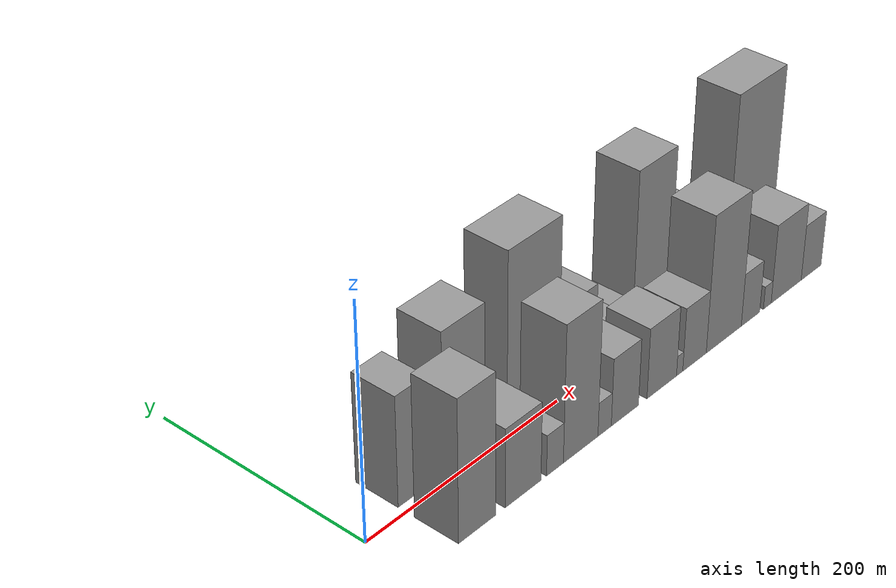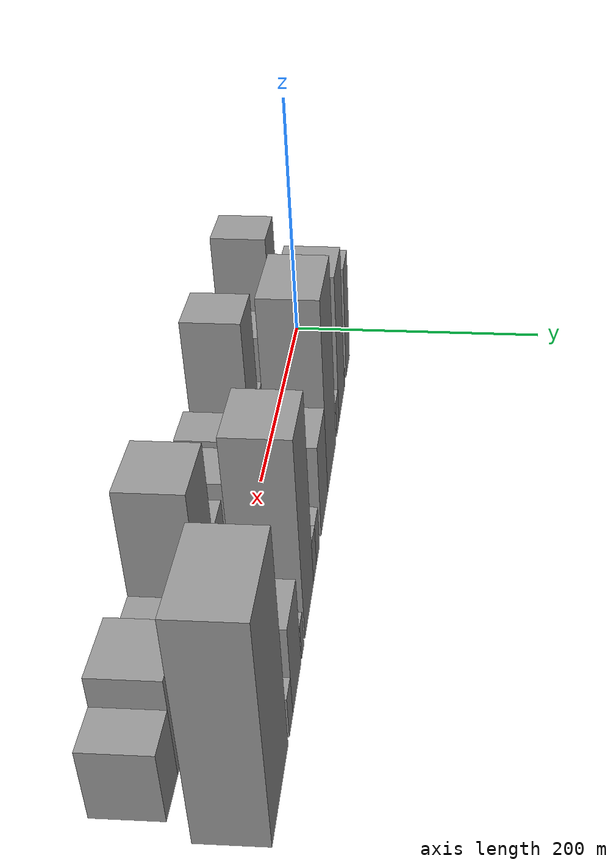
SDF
<sdf version="1.6">
 <world name="default">
  <scene>
   <sky><clouds><speed>12</speed></clouds></sky>
   <ambient>0.4 0.4 0.4 1</ambient>
   <background>0.7 0.7 0.7 1</background>
   <shadows>1</shadows>
  </scene>
  <gravity>0 0 -9.8066</gravity>
  <magnetic_field>6e-06 2.3e-05 -4.2e-05</magnetic_field>
  <physics default="0" name="default_physics" type="ode">
   <ode>
    <solver>
     <type>quick</type>
     <iters>10</iters>
     <sor>1.0</sor>
     <use_dynamic_moi_rescaling>0</use_dynamic_moi_rescaling>
    </solver>
    <constraints>
     <cfm>0</cfm>
     <erp>0.2</erp>
     <contact_max_correcting_vel>100</contact_max_correcting_vel>
     <contact_surface_layer>0.001</contact_surface_layer>
    </constraints>
   </ode>
   <max_step_size>0.004</max_step_size>
   <real_time_factor>1</real_time_factor>
   <real_time_update_rate>250</real_time_update_rate>
  </physics>
  <light name="sun" type="directional">
   <pose>0 0 10 0 0 0</pose>
   <diffuse>0.8 0.8 0.8 1</diffuse>
   <specular>0.2 0.2 0.2 1</specular>
   <attenuation>
    <range>1000</range>
    <constant>0.9</constant>
    <linear>0.01</linear>
    <quadratic>0.001</quadratic>
   </attenuation>
   <direction>-0.5 0.1 -0.9</direction>
  </light>
  <model name="building_1">
   <static>1</static>
   <pose>55.0940 27.5000 0 0.000000 0.000000 1.570796</pose>
   <link name="link">
    <pose>0 0 48.00 0 0 0</pose>
    <collision name="collision"><geometry><box><size>40.0000 30.1881 96.0000</size></box></geometry></collision>
    <visual name="visual">
     <cast_shadows>0</cast_shadows>
     <geometry><box><size>40.0000 30.1881 96.0000</size></box></geometry>
     <material>
      <script>
       <uri>model://grey_wall/materials/scripts</uri>
       <uri>model://grey_wall/materials/textures</uri>
       <name>vrc/grey_wall</name>
      </script>
     </material>
    </visual>
   </link>
  </model>
  <model name="building_2">
   <static>1</static>
   <pose>82.3466 27.5000 0 0.000000 0.000000 1.570796</pose>
   <link name="link">
    <pose>0 0 7.50 0 0 0</pose>
    <collision name="collision"><geometry><box><size>40.0000 6.3170 15.0000</size></box></geometry></collision>
    <visual name="visual">
     <cast_shadows>0</cast_shadows>
     <geometry><box><size>40.0000 6.3170 15.0000</size></box></geometry>
     <material>
      <script>
       <uri>model://grey_wall/materials/scripts</uri>
       <uri>model://grey_wall/materials/textures</uri>
       <name>vrc/grey_wall</name>
      </script>
     </material>
    </visual>
   </link>
  </model>
  <model name="building_3">
   <static>1</static>
   <pose>107.5494 27.5000 0 0.000000 0.000000 1.570796</pose>
   <link name="link">
    <pose>0 0 61.50 0 0 0</pose>
    <collision name="collision"><geometry><box><size>40.0000 44.0886 123.0000</size></box></geometry></collision>
    <visual name="visual">
     <cast_shadows>0</cast_shadows>
     <geometry><box><size>40.0000 44.0886 123.0000</size></box></geometry>
     <material>
      <script>
       <uri>model://grey_wall/materials/scripts</uri>
       <uri>model://grey_wall/materials/textures</uri>
       <name>vrc/grey_wall</name>
      </script>
     </material>
    </visual>
   </link>
  </model>
  <model name="building_4">
   <static>1</static>
   <pose>137.9453 27.5000 0 0.000000 0.000000 1.570796</pose>
   <link name="link">
    <pose>0 0 15.00 0 0 0</pose>
    <collision name="collision"><geometry><box><size>40.0000 16.7031 30.0000</size></box></geometry></collision>
    <visual name="visual">
     <cast_shadows>0</cast_shadows>
     <geometry><box><size>40.0000 16.7031 30.0000</size></box></geometry>
     <material>
      <script>
       <uri>model://grey_wall/materials/scripts</uri>
       <uri>model://grey_wall/materials/textures</uri>
       <name>vrc/grey_wall</name>
      </script>
     </material>
    </visual>
   </link>
  </model>
  <model name="building_5">
   <static>1</static>
   <pose>182.0681 27.5000 0 0.000000 0.000000 1.570796</pose>
   <link name="link">
    <pose>0 0 76.50 0 0 0</pose>
    <collision name="collision"><geometry><box><size>40.0000 57.5425 153.0000</size></box></geometry></collision>
    <visual name="visual">
     <cast_shadows>0</cast_shadows>
     <geometry><box><size>40.0000 57.5425 153.0000</size></box></geometry>
     <material>
      <script>
       <uri>model://grey_wall/materials/scripts</uri>
       <uri>model://grey_wall/materials/textures</uri>
       <name>vrc/grey_wall</name>
      </script>
     </material>
    </visual>
   </link>
  </model>
  <model name="building_6">
   <static>1</static>
   <pose>232.1030 27.5000 0 0.000000 0.000000 1.570796</pose>
   <link name="link">
    <pose>0 0 36.00 0 0 0</pose>
    <collision name="collision"><geometry><box><size>40.0000 42.5274 72.0000</size></box></geometry></collision>
    <visual name="visual">
     <cast_shadows>0</cast_shadows>
     <geometry><box><size>40.0000 42.5274 72.0000</size></box></geometry>
     <material>
      <script>
       <uri>model://grey_wall/materials/scripts</uri>
       <uri>model://grey_wall/materials/textures</uri>
       <name>vrc/grey_wall</name>
      </script>
     </material>
    </visual>
   </link>
  </model>
  <model name="building_7">
   <static>1</static>
   <pose>272.1951 27.5000 0 0.000000 0.000000 1.570796</pose>
   <link name="link">
    <pose>0 0 16.50 0 0 0</pose>
    <collision name="collision"><geometry><box><size>40.0000 17.6567 33.0000</size></box></geometry></collision>
    <visual name="visual">
     <cast_shadows>0</cast_shadows>
     <geometry><box><size>40.0000 17.6567 33.0000</size></box></geometry>
     <material>
      <script>
       <uri>model://grey_wall/materials/scripts</uri>
       <uri>model://grey_wall/materials/textures</uri>
       <name>vrc/grey_wall</name>
      </script>
     </material>
    </visual>
   </link>
  </model>
  <model name="building_8">
   <static>1</static>
   <pose>289.3772 27.5000 0 0.000000 0.000000 1.570796</pose>
   <link name="link">
    <pose>0 0 16.50 0 0 0</pose>
    <collision name="collision"><geometry><box><size>40.0000 16.7075 33.0000</size></box></geometry></collision>
    <visual name="visual">
     <cast_shadows>0</cast_shadows>
     <geometry><box><size>40.0000 16.7075 33.0000</size></box></geometry>
     <material>
      <script>
       <uri>model://grey_wall/materials/scripts</uri>
       <uri>model://grey_wall/materials/textures</uri>
       <name>vrc/grey_wall</name>
      </script>
     </material>
    </visual>
   </link>
  </model>
  <model name="building_9">
   <static>1</static>
   <pose>320.4187 27.5000 0 0.000000 0.000000 1.570796</pose>
   <link name="link">
    <pose>0 0 73.50 0 0 0</pose>
    <collision name="collision"><geometry><box><size>40.0000 45.3755 147.0000</size></box></geometry></collision>
    <visual name="visual">
     <cast_shadows>0</cast_shadows>
     <geometry><box><size>40.0000 45.3755 147.0000</size></box></geometry>
     <material>
      <script>
       <uri>model://grey_wall/materials/scripts</uri>
       <uri>model://grey_wall/materials/textures</uri>
       <name>vrc/grey_wall</name>
      </script>
     </material>
    </visual>
   </link>
  </model>
  <model name="building_10">
   <static>1</static>
   <pose>353.5130 27.5000 0 0.000000 0.000000 1.570796</pose>
   <link name="link">
    <pose>0 0 13.50 0 0 0</pose>
    <collision name="collision"><geometry><box><size>40.0000 10.8130 27.0000</size></box></geometry></collision>
    <visual name="visual">
     <cast_shadows>0</cast_shadows>
     <geometry><box><size>40.0000 10.8130 27.0000</size></box></geometry>
     <material>
      <script>
       <uri>model://grey_wall/materials/scripts</uri>
       <uri>model://grey_wall/materials/textures</uri>
       <name>vrc/grey_wall</name>
      </script>
     </material>
    </visual>
   </link>
  </model>
  <model name="building_11">
   <static>1</static>
   <pose>380.5254 27.5000 0 0.000000 0.000000 1.570796</pose>
   <link name="link">
    <pose>0 0 33.00 0 0 0</pose>
    <collision name="collision"><geometry><box><size>40.0000 37.2118 66.0000</size></box></geometry></collision>
    <visual name="visual">
     <cast_shadows>0</cast_shadows>
     <geometry><box><size>40.0000 37.2118 66.0000</size></box></geometry>
     <material>
      <script>
       <uri>model://grey_wall/materials/scripts</uri>
       <uri>model://grey_wall/materials/textures</uri>
       <name>vrc/grey_wall</name>
      </script>
     </material>
    </visual>
   </link>
  </model>
  <model name="building_12">
   <static>1</static>
   <pose>406.7990 27.5000 0 0.000000 0.000000 1.570796</pose>
   <link name="link">
    <pose>0 0 15.00 0 0 0</pose>
    <collision name="collision"><geometry><box><size>40.0000 15.3354 30.0000</size></box></geometry></collision>
    <visual name="visual">
     <cast_shadows>0</cast_shadows>
     <geometry><box><size>40.0000 15.3354 30.0000</size></box></geometry>
     <material>
      <script>
       <uri>model://grey_wall/materials/scripts</uri>
       <uri>model://grey_wall/materials/textures</uri>
       <name>vrc/grey_wall</name>
      </script>
     </material>
    </visual>
   </link>
  </model>
  <model name="building_13">
   <static>1</static>
   <pose>450.1438 27.5000 0 0.000000 0.000000 1.570796</pose>
   <link name="link">
    <pose>0 0 78.00 0 0 0</pose>
    <collision name="collision"><geometry><box><size>40.0000 61.3542 156.0000</size></box></geometry></collision>
    <visual name="visual">
     <cast_shadows>0</cast_shadows>
     <geometry><box><size>40.0000 61.3542 156.0000</size></box></geometry>
     <material>
      <script>
       <uri>model://grey_wall/materials/scripts</uri>
       <uri>model://grey_wall/materials/textures</uri>
       <name>vrc/grey_wall</name>
      </script>
     </material>
    </visual>
   </link>
  </model>
  <model name="building_14">
   <static>1</static>
   <pose>58.7246 -27.5000 0 0.000000 0.000000 1.570796</pose>
   <link name="link">
    <pose>0 0 61.50 0 0 0</pose>
    <collision name="collision"><geometry><box><size>40.0000 37.4491 123.0000</size></box></geometry></collision>
    <visual name="visual">
     <cast_shadows>0</cast_shadows>
     <geometry><box><size>40.0000 37.4491 123.0000</size></box></geometry>
     <material>
      <script>
       <uri>model://grey_wall/materials/scripts</uri>
       <uri>model://grey_wall/materials/textures</uri>
       <name>vrc/grey_wall</name>
      </script>
     </material>
    </visual>
   </link>
  </model>
  <model name="building_15">
   <static>1</static>
   <pose>106.3455 -27.5000 0 0.000000 0.000000 1.570796</pose>
   <link name="link">
    <pose>0 0 34.50 0 0 0</pose>
    <collision name="collision"><geometry><box><size>40.0000 37.7927 69.0000</size></box></geometry></collision>
    <visual name="visual">
     <cast_shadows>0</cast_shadows>
     <geometry><box><size>40.0000 37.7927 69.0000</size></box></geometry>
     <material>
      <script>
       <uri>model://grey_wall/materials/scripts</uri>
       <uri>model://grey_wall/materials/textures</uri>
       <name>vrc/grey_wall</name>
      </script>
     </material>
    </visual>
   </link>
  </model>
  <model name="building_16">
   <static>1</static>
   <pose>140.3807 -27.5000 0 0.000000 0.000000 1.570796</pose>
   <link name="link">
    <pose>0 0 18.00 0 0 0</pose>
    <collision name="collision"><geometry><box><size>40.0000 18.2777 36.0000</size></box></geometry></collision>
    <visual name="visual">
     <cast_shadows>0</cast_shadows>
     <geometry><box><size>40.0000 18.2777 36.0000</size></box></geometry>
     <material>
      <script>
       <uri>model://grey_wall/materials/scripts</uri>
       <uri>model://grey_wall/materials/textures</uri>
       <name>vrc/grey_wall</name>
      </script>
     </material>
    </visual>
   </link>
  </model>
  <model name="building_17">
   <static>1</static>
   <pose>168.7534 -27.5000 0 0.000000 0.000000 1.570796</pose>
   <link name="link">
    <pose>0 0 60.00 0 0 0</pose>
    <collision name="collision"><geometry><box><size>40.0000 38.4679 120.0000</size></box></geometry></collision>
    <visual name="visual">
     <cast_shadows>0</cast_shadows>
     <geometry><box><size>40.0000 38.4679 120.0000</size></box></geometry>
     <material>
      <script>
       <uri>model://grey_wall/materials/scripts</uri>
       <uri>model://grey_wall/materials/textures</uri>
       <name>vrc/grey_wall</name>
      </script>
     </material>
    </visual>
   </link>
  </model>
  <model name="building_18">
   <static>1</static>
   <pose>195.5808 -27.5000 0 0.000000 0.000000 1.570796</pose>
   <link name="link">
    <pose>0 0 15.00 0 0 0</pose>
    <collision name="collision"><geometry><box><size>40.0000 15.1869 30.0000</size></box></geometry></collision>
    <visual name="visual">
     <cast_shadows>0</cast_shadows>
     <geometry><box><size>40.0000 15.1869 30.0000</size></box></geometry>
     <material>
      <script>
       <uri>model://grey_wall/materials/scripts</uri>
       <uri>model://grey_wall/materials/textures</uri>
       <name>vrc/grey_wall</name>
      </script>
     </material>
    </visual>
   </link>
  </model>
  <model name="building_19">
   <static>1</static>
   <pose>218.9603 -27.5000 0 0.000000 0.000000 1.570796</pose>
   <link name="link">
    <pose>0 0 30.00 0 0 0</pose>
    <collision name="collision"><geometry><box><size>40.0000 31.5721 60.0000</size></box></geometry></collision>
    <visual name="visual">
     <cast_shadows>0</cast_shadows>
     <geometry><box><size>40.0000 31.5721 60.0000</size></box></geometry>
     <material>
      <script>
       <uri>model://grey_wall/materials/scripts</uri>
       <uri>model://grey_wall/materials/textures</uri>
       <name>vrc/grey_wall</name>
      </script>
     </material>
    </visual>
   </link>
  </model>
  <model name="building_20">
   <static>1</static>
   <pose>262.4641 -27.5000 0 0.000000 0.000000 1.570796</pose>
   <link name="link">
    <pose>0 0 31.50 0 0 0</pose>
    <collision name="collision"><geometry><box><size>40.0000 35.4355 63.0000</size></box></geometry></collision>
    <visual name="visual">
     <cast_shadows>0</cast_shadows>
     <geometry><box><size>40.0000 35.4355 63.0000</size></box></geometry>
     <material>
      <script>
       <uri>model://grey_wall/materials/scripts</uri>
       <uri>model://grey_wall/materials/textures</uri>
       <name>vrc/grey_wall</name>
      </script>
     </material>
    </visual>
   </link>
  </model>
  <model name="building_21">
   <static>1</static>
   <pose>283.9821 -27.5000 0 0.000000 0.000000 1.570796</pose>
   <link name="link">
    <pose>0 0 9.00 0 0 0</pose>
    <collision name="collision"><geometry><box><size>40.0000 7.6004 18.0000</size></box></geometry></collision>
    <visual name="visual">
     <cast_shadows>0</cast_shadows>
     <geometry><box><size>40.0000 7.6004 18.0000</size></box></geometry>
     <material>
      <script>
       <uri>model://grey_wall/materials/scripts</uri>
       <uri>model://grey_wall/materials/textures</uri>
       <name>vrc/grey_wall</name>
      </script>
     </material>
    </visual>
   </link>
  </model>
  <model name="building_22">
   <static>1</static>
   <pose>302.3614 -27.5000 0 0.000000 0.000000 1.570796</pose>
   <link name="link">
    <pose>0 0 28.50 0 0 0</pose>
    <collision name="collision"><geometry><box><size>40.0000 29.1583 57.0000</size></box></geometry></collision>
    <visual name="visual">
     <cast_shadows>0</cast_shadows>
     <geometry><box><size>40.0000 29.1583 57.0000</size></box></geometry>
     <material>
      <script>
       <uri>model://grey_wall/materials/scripts</uri>
       <uri>model://grey_wall/materials/textures</uri>
       <name>vrc/grey_wall</name>
      </script>
     </material>
    </visual>
   </link>
  </model>
  <model name="building_23">
   <static>1</static>
   <pose>339.2685 -27.5000 0 0.000000 0.000000 1.570796</pose>
   <link name="link">
    <pose>0 0 61.50 0 0 0</pose>
    <collision name="collision"><geometry><box><size>40.0000 44.6558 123.0000</size></box></geometry></collision>
    <visual name="visual">
     <cast_shadows>0</cast_shadows>
     <geometry><box><size>40.0000 44.6558 123.0000</size></box></geometry>
     <material>
      <script>
       <uri>model://grey_wall/materials/scripts</uri>
       <uri>model://grey_wall/materials/textures</uri>
       <name>vrc/grey_wall</name>
      </script>
     </material>
    </visual>
   </link>
  </model>
  <model name="building_24">
   <static>1</static>
   <pose>373.6818 -27.5000 0 0.000000 0.000000 1.570796</pose>
   <link name="link">
    <pose>0 0 24.00 0 0 0</pose>
    <collision name="collision"><geometry><box><size>40.0000 24.1710 48.0000</size></box></geometry></collision>
    <visual name="visual">
     <cast_shadows>0</cast_shadows>
     <geometry><box><size>40.0000 24.1710 48.0000</size></box></geometry>
     <material>
      <script>
       <uri>model://grey_wall/materials/scripts</uri>
       <uri>model://grey_wall/materials/textures</uri>
       <name>vrc/grey_wall</name>
      </script>
     </material>
    </visual>
   </link>
  </model>
  <model name="building_25">
   <static>1</static>
   <pose>395.8757 -27.5000 0 0.000000 0.000000 1.570796</pose>
   <link name="link">
    <pose>0 0 10.50 0 0 0</pose>
    <collision name="collision"><geometry><box><size>40.0000 10.2167 21.0000</size></box></geometry></collision>
    <visual name="visual">
     <cast_shadows>0</cast_shadows>
     <geometry><box><size>40.0000 10.2167 21.0000</size></box></geometry>
     <material>
      <script>
       <uri>model://grey_wall/materials/scripts</uri>
       <uri>model://grey_wall/materials/textures</uri>
       <name>vrc/grey_wall</name>
      </script>
     </material>
    </visual>
   </link>
  </model>
  <model name="building_26">
   <static>1</static>
   <pose>421.3488 -27.5000 0 0.000000 0.000000 1.570796</pose>
   <link name="link">
    <pose>0 0 36.00 0 0 0</pose>
    <collision name="collision"><geometry><box><size>40.0000 40.7296 72.0000</size></box></geometry></collision>
    <visual name="visual">
     <cast_shadows>0</cast_shadows>
     <geometry><box><size>40.0000 40.7296 72.0000</size></box></geometry>
     <material>
      <script>
       <uri>model://grey_wall/materials/scripts</uri>
       <uri>model://grey_wall/materials/textures</uri>
       <name>vrc/grey_wall</name>
      </script>
     </material>
    </visual>
   </link>
  </model>
  <model name="building_27">
   <static>1</static>
   <pose>455.5549 -27.5000 0 0.000000 0.000000 1.570796</pose>
   <link name="link">
    <pose>0 0 25.50 0 0 0</pose>
    <collision name="collision"><geometry><box><size>40.0000 27.6827 51.0000</size></box></geometry></collision>
    <visual name="visual">
     <cast_shadows>0</cast_shadows>
     <geometry><box><size>40.0000 27.6827 51.0000</size></box></geometry>
     <material>
      <script>
       <uri>model://grey_wall/materials/scripts</uri>
       <uri>model://grey_wall/materials/textures</uri>
       <name>vrc/grey_wall</name>
      </script>
     </material>
    </visual>
   </link>
  </model>
 </world>
</sdf>
